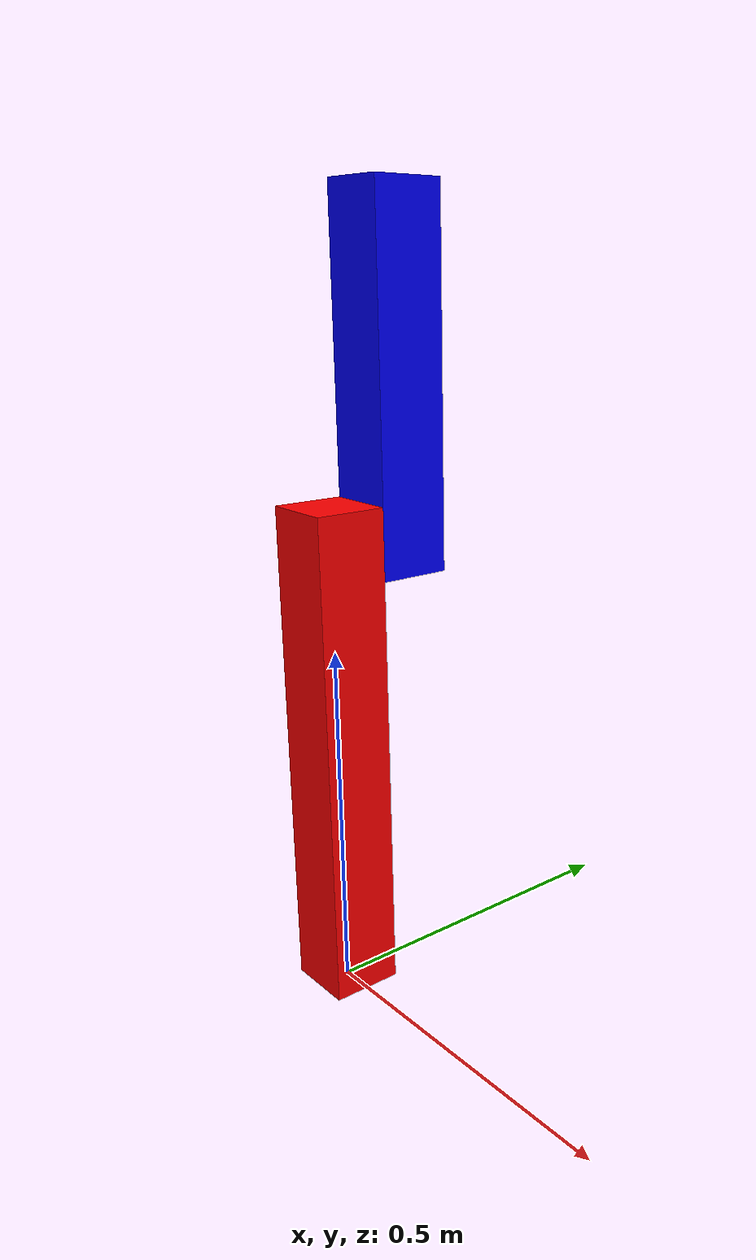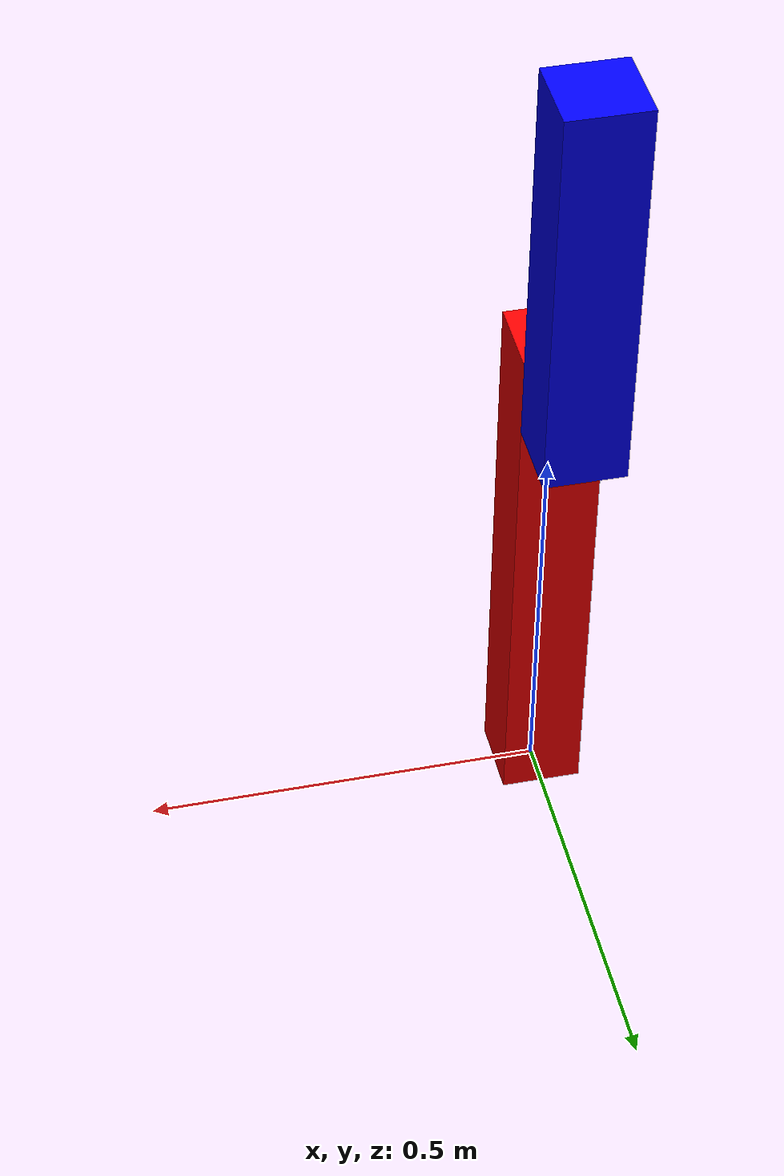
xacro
<?xml version="0.1"?>
<robot xmlns:xacro="http://www.ros.org/wiki/xacro" name="1 DoF Bot">

    <xacro:include filename="$(find robot_urdf)/oneDofBot_description.urdf.xacro" />
    <xacro:include filename="$(find robot_urdf)/oneDof_ros2_control.urdf.xacro" />

    <xacro:bot_description />
    <xacro:oneDof_ros2_control/>
</robot>

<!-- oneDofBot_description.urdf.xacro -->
<robot xmlns:xacro="http://www.ros.org/wiki/xacro" name="1 DoF Bot">

    <xacro:macro name="bot_description">
        <material name="red">
            <color rgba="1 0 0 1" />
        </material>

        <material name="blue">
            <color rgba="0 0 1 1" />
        </material>

        <material name="green">
            <color rgba="0 1 0 1" />
        </material>

        <link name="world" />
        <xacro:property name="base_width" value="0.1" />
        <xacro:property name="base_length" value="0.1" />
        <xacro:property name="base_height" value="0.7" />

        <xacro:property name="upper_width" value="0.1" />
        <xacro:property name="upper_length" value="0.1" />
        <xacro:property name="upper_height" value="0.5" />

        <xacro:property name="inertiaTest" value="0.1" />

        <joint name="fixed_joint" type="fixed">
            <parent link="world" />
            <child link="base_link" />
            <origin xyz="0 0 0" rpy="0 0 0"/>
        </joint>

        <link name="base_link">
            <visual>
                <origin xyz="0 0 ${base_height/2}" rpy="0 0 0" />
                <geometry>
                    <box size="${base_length} ${base_width} ${base_height}" />
                </geometry>
                <material name="red" />
            </visual>
            <inertial>
                <origin xyz="0 0 0" rpy="0 0 0"/>
                <mass value="1"/>
                <inertia ixx="${inertiaTest}" ixy="0" ixz="0" iyy="${inertiaTest}" iyz = "0" izz="${inertiaTest}" />
            </inertial>
        </link>

        <joint name="dof_joint" type="continuous" >
            <parent link="base_link" />
            <child link="upper_link" />
            <origin xyz="0 ${base_width/2} ${base_height - 0.1}" />
            <dynamics damping="0.0" friction="0.0"/>
        </joint>

        <link name="upper_link">
            <visual>
                <origin xyz="0 ${upper_width/2} ${upper_height/2} " rpy="0 0 0" />
                <geometry>
                    <box size="${upper_length} ${upper_width} ${upper_height}" />
                </geometry>
                <material name="blue" />
            </visual>
            <inertial>
                <origin xyz="0 0 0" rpy="0 0 0"/>
                <mass value="1"/>
                <inertia ixx="${inertiaTest}" ixy="0" ixz="0" iyy="${inertiaTest}" iyz = "0" izz="${inertiaTest}" />
            </inertial>
        </link>

    </xacro:macro>
</robot>
